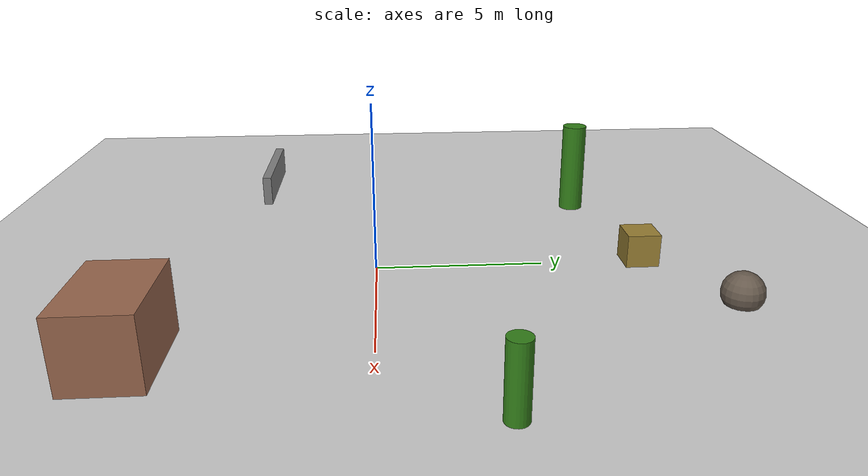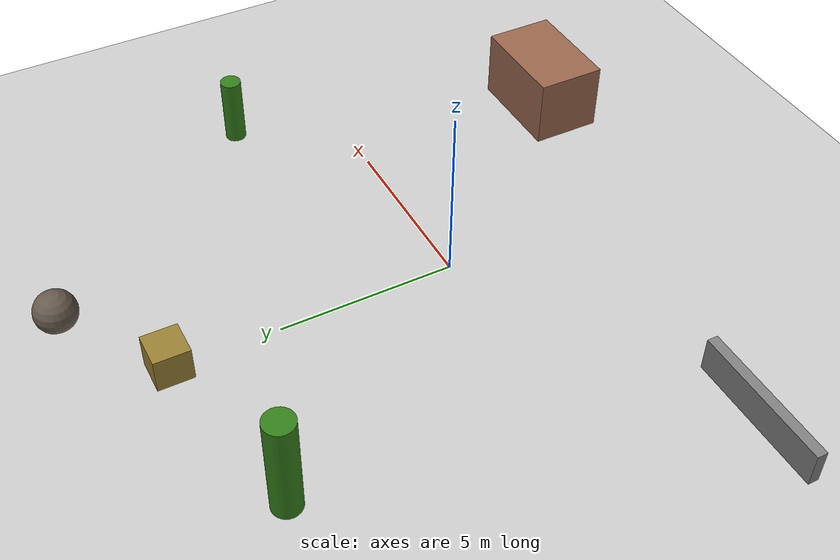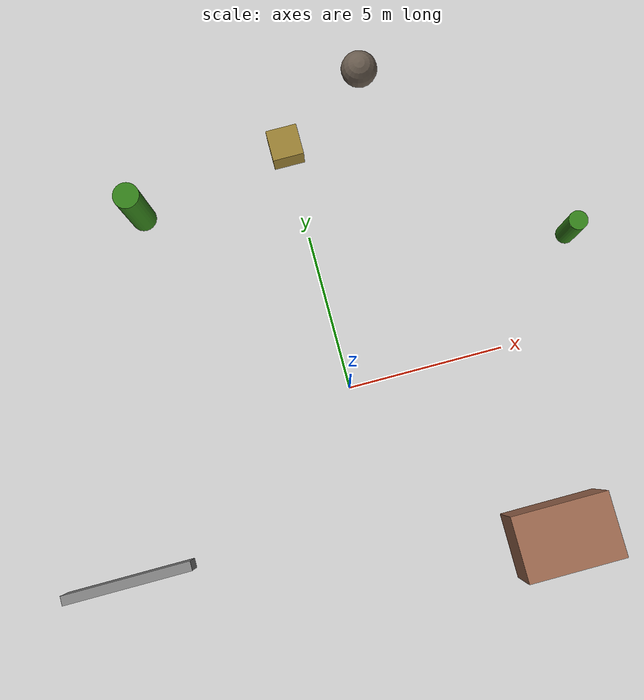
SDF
<sdf version="1.6">
 <world name="gnns_depth_world">
  <physics name="default_physics" default="0" type="ode">
   <max_step_size>0.001</max_step_size>
   <real_time_factor>1</real_time_factor>
   <real_time_update_rate>1000</real_time_update_rate>
  </physics>
  <scene><ambient>0.6 0.6 0.6 1</ambient><background>0.4 0.6 0.9 1</background><shadows>true</shadows></scene>
  <include><uri>model://sun</uri></include>
  <model name="ground_plane">
   <static>true</static>
   <link name="link">
    <collision name="collision">
     <geometry><plane><normal>0 0 1</normal><size>100 100</size></plane></geometry>
    </collision>
    <visual name="visual">
     <geometry><plane><normal>0 0 1</normal><size>100 100</size></plane></geometry>
     <material>
      <script><uri>file://media/materials/scripts/gazebo.material</uri><name>Gazebo/Grey</name></script>
     </material>
    </visual>
   </link>
  </model>
  <model name="tree_1">
   <static>true</static>
   <pose>8 3 1 0 0 0</pose>
   <link name="link">
    <collision name="col">
     <geometry><cylinder><radius>0.3</radius><length>2</length></cylinder></geometry>
    </collision>
    <visual name="vis">
     <geometry><cylinder><radius>0.3</radius><length>2</length></cylinder></geometry>
     <material><ambient>0.2 0.5 0.1 1</ambient></material>
    </visual>
   </link>
  </model>
  <model name="tree_2">
   <static>true</static>
   <pose>-5 7 1.5 0 0 0</pose>
   <link name="link">
    <collision name="col">
     <geometry><cylinder><radius>0.4</radius><length>3</length></cylinder></geometry>
    </collision>
    <visual name="vis">
     <geometry><cylinder><radius>0.4</radius><length>3</length></cylinder></geometry>
     <material><ambient>0.2 0.5 0.1 1</ambient></material>
    </visual>
   </link>
  </model>
  <model name="building_1">
   <static>true</static>
   <pose>5 -6 1 0 0 0</pose>
   <link name="link">
    <collision name="col"><geometry><box><size>3 2 2</size></box></geometry></collision>
    <visual name="vis">
     <geometry><box><size>3 2 2</size></box></geometry>
     <material><ambient>0.6 0.4 0.3 1</ambient></material>
    </visual>
   </link>
  </model>
  <model name="wall_1">
   <static>true</static>
   <pose>-8 -4 0.5 0 0 0</pose>
   <link name="link">
    <collision name="col"><geometry><box><size>4 0.3 1</size></box></geometry></collision>
    <visual name="vis">
     <geometry><box><size>4 0.3 1</size></box></geometry>
     <material><ambient>0.5 0.5 0.5 1</ambient></material>
    </visual>
   </link>
  </model>
  <model name="rock_1">
   <static>true</static>
   <pose>3 10 0.3 0 0 0</pose>
   <link name="link">
    <collision name="col"><geometry><sphere><radius>0.6</radius></sphere></geometry></collision>
    <visual name="vis">
     <geometry><sphere><radius>0.6</radius></sphere></geometry>
     <material><ambient>0.4 0.35 0.3 1</ambient></material>
    </visual>
   </link>
  </model>
  <model name="crate_1">
   <static>true</static>
   <pose>0 8 0.5 0 0 0</pose>
   <link name="link">
    <collision name="col"><geometry><box><size>1 1 1</size></box></geometry></collision>
    <visual name="vis">
     <geometry><box><size>1 1 1</size></box></geometry>
     <material><ambient>0.6 0.5 0.2 1</ambient></material>
    </visual>
   </link>
  </model>
 </world>
</sdf>
